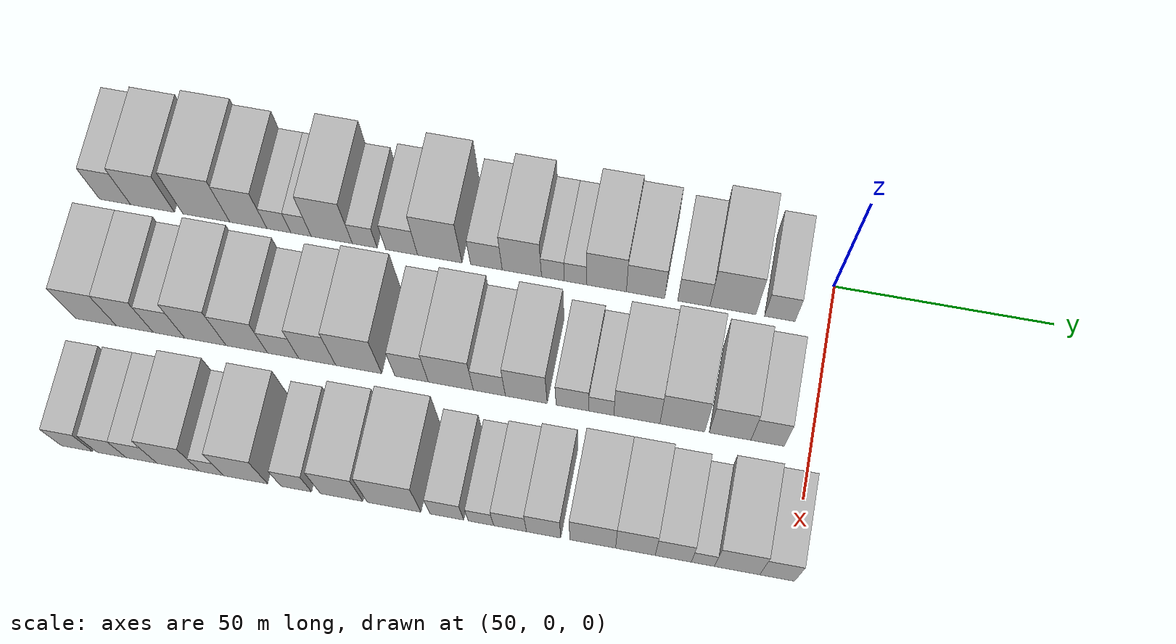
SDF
<sdf version="1.6">
 <world name="default">
  <model name="building_21">
   <static>1</static>
   <pose>50.0000 -166.2073 0 0.000000 0.000000 0.000000</pose>
   <link name="link">
    <pose>0 0 9.00 0 0 0</pose>
    <collision name="collision"><geometry><box><size>20.0000 7.3956 18.0000</size></box></geometry></collision>
    <visual name="visual">
     <cast_shadows>0</cast_shadows>
     <geometry><box><size>20.0000 7.3956 18.0000</size></box></geometry>
     <material>
      <script>
       <uri>model://HANNAS_wall/materials/scripts</uri>
       <uri>model://HANNAS_wall/materials/textures</uri>
       <name>vrc/HANNAS_wall</name>
      </script>
     </material>
    </visual>
   </link>
  </model>
  <model name="building_22">
   <static>1</static>
   <pose>50.0000 -157.2768 0 0.000000 0.000000 0.000000</pose>
   <link name="link">
    <pose>0 0 10.50 0 0 0</pose>
    <collision name="collision"><geometry><box><size>20.0000 10.4653 21.0000</size></box></geometry></collision>
    <visual name="visual">
     <cast_shadows>0</cast_shadows>
     <geometry><box><size>20.0000 10.4653 21.0000</size></box></geometry>
     <material>
      <script>
       <uri>model://HANNAS_wall/materials/scripts</uri>
       <uri>model://HANNAS_wall/materials/textures</uri>
       <name>vrc/HANNAS_wall</name>
      </script>
     </material>
    </visual>
   </link>
  </model>
  <model name="building_23">
   <static>1</static>
   <pose>50.0000 -144.4714 0 0.000000 0.000000 0.000000</pose>
   <link name="link">
    <pose>0 0 12.00 0 0 0</pose>
    <collision name="collision"><geometry><box><size>20.0000 11.1454 24.0000</size></box></geometry></collision>
    <visual name="visual">
     <cast_shadows>0</cast_shadows>
     <geometry><box><size>20.0000 11.1454 24.0000</size></box></geometry>
     <material>
      <script>
       <uri>model://HANNAS_wall/materials/scripts</uri>
       <uri>model://HANNAS_wall/materials/textures</uri>
       <name>vrc/HANNAS_wall</name>
      </script>
     </material>
    </visual>
   </link>
  </model>
  <model name="building_24">
   <static>1</static>
   <pose>50.0000 -134.5044 0 0.000000 0.000000 0.000000</pose>
   <link name="link">
    <pose>0 0 10.50 0 0 0</pose>
    <collision name="collision"><geometry><box><size>20.0000 8.7886 21.0000</size></box></geometry></collision>
    <visual name="visual">
     <cast_shadows>0</cast_shadows>
     <geometry><box><size>20.0000 8.7886 21.0000</size></box></geometry>
     <material>
      <script>
       <uri>model://HANNAS_wall/materials/scripts</uri>
       <uri>model://HANNAS_wall/materials/textures</uri>
       <name>vrc/HANNAS_wall</name>
      </script>
     </material>
    </visual>
   </link>
  </model>
  <model name="building_25">
   <static>1</static>
   <pose>50.0000 -127.2992 0 0.000000 0.000000 0.000000</pose>
   <link name="link">
    <pose>0 0 6.00 0 0 0</pose>
    <collision name="collision"><geometry><box><size>20.0000 5.6218 12.0000</size></box></geometry></collision>
    <visual name="visual">
     <cast_shadows>0</cast_shadows>
     <geometry><box><size>20.0000 5.6218 12.0000</size></box></geometry>
     <material>
      <script>
       <uri>model://HANNAS_wall/materials/scripts</uri>
       <uri>model://HANNAS_wall/materials/textures</uri>
       <name>vrc/HANNAS_wall</name>
      </script>
     </material>
    </visual>
   </link>
  </model>
  <model name="building_26">
   <static>1</static>
   <pose>50.0000 -122.0764 0 0.000000 0.000000 0.000000</pose>
   <link name="link">
    <pose>0 0 6.00 0 0 0</pose>
    <collision name="collision"><geometry><box><size>20.0000 4.8238 12.0000</size></box></geometry></collision>
    <visual name="visual">
     <cast_shadows>0</cast_shadows>
     <geometry><box><size>20.0000 4.8238 12.0000</size></box></geometry>
     <material>
      <script>
       <uri>model://HANNAS_wall/materials/scripts</uri>
       <uri>model://HANNAS_wall/materials/textures</uri>
       <name>vrc/HANNAS_wall</name>
      </script>
     </material>
    </visual>
   </link>
  </model>
  <model name="building_27">
   <static>1</static>
   <pose>50.0000 -114.8184 0 0.000000 0.000000 0.000000</pose>
   <link name="link">
    <pose>0 0 12.00 0 0 0</pose>
    <collision name="collision"><geometry><box><size>20.0000 9.6922 24.0000</size></box></geometry></collision>
    <visual name="visual">
     <cast_shadows>0</cast_shadows>
     <geometry><box><size>20.0000 9.6922 24.0000</size></box></geometry>
     <material>
      <script>
       <uri>model://HANNAS_wall/materials/scripts</uri>
       <uri>model://HANNAS_wall/materials/textures</uri>
       <name>vrc/HANNAS_wall</name>
      </script>
     </material>
    </visual>
   </link>
  </model>
  <model name="building_28">
   <static>1</static>
   <pose>50.0000 -107.0664 0 0.000000 0.000000 0.000000</pose>
   <link name="link">
    <pose>0 0 6.00 0 0 0</pose>
    <collision name="collision"><geometry><box><size>20.0000 5.8118 12.0000</size></box></geometry></collision>
    <visual name="visual">
     <cast_shadows>0</cast_shadows>
     <geometry><box><size>20.0000 5.8118 12.0000</size></box></geometry>
     <material>
      <script>
       <uri>model://HANNAS_wall/materials/scripts</uri>
       <uri>model://HANNAS_wall/materials/textures</uri>
       <name>vrc/HANNAS_wall</name>
      </script>
     </material>
    </visual>
   </link>
  </model>
  <model name="building_29">
   <static>1</static>
   <pose>50.0000 -98.4347 0 0.000000 0.000000 0.000000</pose>
   <link name="link">
    <pose>0 0 7.50 0 0 0</pose>
    <collision name="collision"><geometry><box><size>20.0000 7.4516 15.0000</size></box></geometry></collision>
    <visual name="visual">
     <cast_shadows>0</cast_shadows>
     <geometry><box><size>20.0000 7.4516 15.0000</size></box></geometry>
     <material>
      <script>
       <uri>model://HANNAS_wall/materials/scripts</uri>
       <uri>model://HANNAS_wall/materials/textures</uri>
       <name>vrc/HANNAS_wall</name>
      </script>
     </material>
    </visual>
   </link>
  </model>
  <model name="building_30">
   <static>1</static>
   <pose>50.0000 -89.5122 0 0.000000 0.000000 0.000000</pose>
   <link name="link">
    <pose>0 0 12.00 0 0 0</pose>
    <collision name="collision"><geometry><box><size>20.0000 10.3935 24.0000</size></box></geometry></collision>
    <visual name="visual">
     <cast_shadows>0</cast_shadows>
     <geometry><box><size>20.0000 10.3935 24.0000</size></box></geometry>
     <material>
      <script>
       <uri>model://HANNAS_wall/materials/scripts</uri>
       <uri>model://HANNAS_wall/materials/textures</uri>
       <name>vrc/HANNAS_wall</name>
      </script>
     </material>
    </visual>
   </link>
  </model>
  <model name="building_31">
   <static>1</static>
   <pose>50.0000 -78.6340 0 0.000000 0.000000 0.000000</pose>
   <link name="link">
    <pose>0 0 7.50 0 0 0</pose>
    <collision name="collision"><geometry><box><size>20.0000 7.3629 15.0000</size></box></geometry></collision>
    <visual name="visual">
     <cast_shadows>0</cast_shadows>
     <geometry><box><size>20.0000 7.3629 15.0000</size></box></geometry>
     <material>
      <script>
       <uri>model://HANNAS_wall/materials/scripts</uri>
       <uri>model://HANNAS_wall/materials/textures</uri>
       <name>vrc/HANNAS_wall</name>
      </script>
     </material>
    </visual>
   </link>
  </model>
  <model name="building_32">
   <static>1</static>
   <pose>50.0000 -70.3934 0 0.000000 0.000000 0.000000</pose>
   <link name="link">
    <pose>0 0 10.50 0 0 0</pose>
    <collision name="collision"><geometry><box><size>20.0000 9.1181 21.0000</size></box></geometry></collision>
    <visual name="visual">
     <cast_shadows>0</cast_shadows>
     <geometry><box><size>20.0000 9.1181 21.0000</size></box></geometry>
     <material>
      <script>
       <uri>model://HANNAS_wall/materials/scripts</uri>
       <uri>model://HANNAS_wall/materials/textures</uri>
       <name>vrc/HANNAS_wall</name>
      </script>
     </material>
    </visual>
   </link>
  </model>
  <model name="building_33">
   <static>1</static>
   <pose>50.0000 -63.2022 0 0.000000 0.000000 0.000000</pose>
   <link name="link">
    <pose>0 0 6.00 0 0 0</pose>
    <collision name="collision"><geometry><box><size>20.0000 5.2643 12.0000</size></box></geometry></collision>
    <visual name="visual">
     <cast_shadows>0</cast_shadows>
     <geometry><box><size>20.0000 5.2643 12.0000</size></box></geometry>
     <material>
      <script>
       <uri>model://HANNAS_wall/materials/scripts</uri>
       <uri>model://HANNAS_wall/materials/textures</uri>
       <name>vrc/HANNAS_wall</name>
      </script>
     </material>
    </visual>
   </link>
  </model>
  <model name="building_34">
   <static>1</static>
   <pose>50.0000 -58.0219 0 0.000000 0.000000 0.000000</pose>
   <link name="link">
    <pose>0 0 6.00 0 0 0</pose>
    <collision name="collision"><geometry><box><size>20.0000 5.0963 12.0000</size></box></geometry></collision>
    <visual name="visual">
     <cast_shadows>0</cast_shadows>
     <geometry><box><size>20.0000 5.0963 12.0000</size></box></geometry>
     <material>
      <script>
       <uri>model://HANNAS_wall/materials/scripts</uri>
       <uri>model://HANNAS_wall/materials/textures</uri>
       <name>vrc/HANNAS_wall</name>
      </script>
     </material>
    </visual>
   </link>
  </model>
  <model name="building_35">
   <static>1</static>
   <pose>50.0000 -50.8570 0 0.000000 0.000000 0.000000</pose>
   <link name="link">
    <pose>0 0 10.50 0 0 0</pose>
    <collision name="collision"><geometry><box><size>20.0000 9.2334 21.0000</size></box></geometry></collision>
    <visual name="visual">
     <cast_shadows>0</cast_shadows>
     <geometry><box><size>20.0000 9.2334 21.0000</size></box></geometry>
     <material>
      <script>
       <uri>model://HANNAS_wall/materials/scripts</uri>
       <uri>model://HANNAS_wall/materials/textures</uri>
       <name>vrc/HANNAS_wall</name>
      </script>
     </material>
    </visual>
   </link>
  </model>
  <model name="building_36">
   <static>1</static>
   <pose>50.0000 -41.8305 0 0.000000 0.000000 0.000000</pose>
   <link name="link">
    <pose>0 0 9.00 0 0 0</pose>
    <collision name="collision"><geometry><box><size>20.0000 8.8197 18.0000</size></box></geometry></collision>
    <visual name="visual">
     <cast_shadows>0</cast_shadows>
     <geometry><box><size>20.0000 8.8197 18.0000</size></box></geometry>
     <material>
      <script>
       <uri>model://HANNAS_wall/materials/scripts</uri>
       <uri>model://HANNAS_wall/materials/textures</uri>
       <name>vrc/HANNAS_wall</name>
      </script>
     </material>
    </visual>
   </link>
  </model>
  <model name="building_37">
   <static>1</static>
   <pose>50.0000 -30.7251 0 0.000000 0.000000 0.000000</pose>
   <link name="link">
    <pose>0 0 7.50 0 0 0</pose>
    <collision name="collision"><geometry><box><size>20.0000 7.3911 15.0000</size></box></geometry></collision>
    <visual name="visual">
     <cast_shadows>0</cast_shadows>
     <geometry><box><size>20.0000 7.3911 15.0000</size></box></geometry>
     <material>
      <script>
       <uri>model://HANNAS_wall/materials/scripts</uri>
       <uri>model://HANNAS_wall/materials/textures</uri>
       <name>vrc/HANNAS_wall</name>
      </script>
     </material>
    </visual>
   </link>
  </model>
  <model name="building_38">
   <static>1</static>
   <pose>50.0000 -21.7830 0 0.000000 0.000000 0.000000</pose>
   <link name="link">
    <pose>0 0 12.00 0 0 0</pose>
    <collision name="collision"><geometry><box><size>20.0000 10.4931 24.0000</size></box></geometry></collision>
    <visual name="visual">
     <cast_shadows>0</cast_shadows>
     <geometry><box><size>20.0000 10.4931 24.0000</size></box></geometry>
     <material>
      <script>
       <uri>model://HANNAS_wall/materials/scripts</uri>
       <uri>model://HANNAS_wall/materials/textures</uri>
       <name>vrc/HANNAS_wall</name>
      </script>
     </material>
    </visual>
   </link>
  </model>
  <model name="building_39">
   <static>1</static>
   <pose>50.0000 -11.0587 0 0.000000 0.000000 0.000000</pose>
   <link name="link">
    <pose>0 0 7.50 0 0 0</pose>
    <collision name="collision"><geometry><box><size>20.0000 6.9554 15.0000</size></box></geometry></collision>
    <visual name="visual">
     <cast_shadows>0</cast_shadows>
     <geometry><box><size>20.0000 6.9554 15.0000</size></box></geometry>
     <material>
      <script>
       <uri>model://HANNAS_wall/materials/scripts</uri>
       <uri>model://HANNAS_wall/materials/textures</uri>
       <name>vrc/HANNAS_wall</name>
      </script>
     </material>
    </visual>
   </link>
  </model>
  <model name="building_93">
   <static>1</static>
   <pose>79.0000 -162.5135 0 0.000000 0.000000 0.000000</pose>
   <link name="link">
    <pose>0 0 10.50 0 0 0</pose>
    <collision name="collision"><geometry><box><size>20.0000 9.4381 21.0000</size></box></geometry></collision>
    <visual name="visual">
     <cast_shadows>0</cast_shadows>
     <geometry><box><size>20.0000 9.4381 21.0000</size></box></geometry>
     <material>
      <script>
       <uri>model://HANNAS_wall/materials/scripts</uri>
       <uri>model://HANNAS_wall/materials/textures</uri>
       <name>vrc/HANNAS_wall</name>
      </script>
     </material>
    </visual>
   </link>
  </model>
  <model name="building_94">
   <static>1</static>
   <pose>79.0000 -153.5056 0 0.000000 0.000000 0.000000</pose>
   <link name="link">
    <pose>0 0 10.50 0 0 0</pose>
    <collision name="collision"><geometry><box><size>20.0000 8.5777 21.0000</size></box></geometry></collision>
    <visual name="visual">
     <cast_shadows>0</cast_shadows>
     <geometry><box><size>20.0000 8.5777 21.0000</size></box></geometry>
     <material>
      <script>
       <uri>model://HANNAS_wall/materials/scripts</uri>
       <uri>model://HANNAS_wall/materials/textures</uri>
       <name>vrc/HANNAS_wall</name>
      </script>
     </material>
    </visual>
   </link>
  </model>
  <model name="building_95">
   <static>1</static>
   <pose>79.0000 -145.5648 0 0.000000 0.000000 0.000000</pose>
   <link name="link">
    <pose>0 0 9.00 0 0 0</pose>
    <collision name="collision"><geometry><box><size>20.0000 7.3039 18.0000</size></box></geometry></collision>
    <visual name="visual">
     <cast_shadows>0</cast_shadows>
     <geometry><box><size>20.0000 7.3039 18.0000</size></box></geometry>
     <material>
      <script>
       <uri>model://HANNAS_wall/materials/scripts</uri>
       <uri>model://HANNAS_wall/materials/textures</uri>
       <name>vrc/HANNAS_wall</name>
      </script>
     </material>
    </visual>
   </link>
  </model>
  <model name="building_96">
   <static>1</static>
   <pose>79.0000 -137.1071 0 0.000000 0.000000 0.000000</pose>
   <link name="link">
    <pose>0 0 12.00 0 0 0</pose>
    <collision name="collision"><geometry><box><size>20.0000 9.6114 24.0000</size></box></geometry></collision>
    <visual name="visual">
     <cast_shadows>0</cast_shadows>
     <geometry><box><size>20.0000 9.6114 24.0000</size></box></geometry>
     <material>
      <script>
       <uri>model://HANNAS_wall/materials/scripts</uri>
       <uri>model://HANNAS_wall/materials/textures</uri>
       <name>vrc/HANNAS_wall</name>
      </script>
     </material>
    </visual>
   </link>
  </model>
  <model name="building_97">
   <static>1</static>
   <pose>79.0000 -127.5388 0 0.000000 0.000000 0.000000</pose>
   <link name="link">
    <pose>0 0 10.50 0 0 0</pose>
    <collision name="collision"><geometry><box><size>20.0000 9.5252 21.0000</size></box></geometry></collision>
    <visual name="visual">
     <cast_shadows>0</cast_shadows>
     <geometry><box><size>20.0000 9.5252 21.0000</size></box></geometry>
     <material>
      <script>
       <uri>model://HANNAS_wall/materials/scripts</uri>
       <uri>model://HANNAS_wall/materials/textures</uri>
       <name>vrc/HANNAS_wall</name>
      </script>
     </material>
    </visual>
   </link>
  </model>
  <model name="building_98">
   <static>1</static>
   <pose>79.0000 -119.1554 0 0.000000 0.000000 0.000000</pose>
   <link name="link">
    <pose>0 0 7.50 0 0 0</pose>
    <collision name="collision"><geometry><box><size>20.0000 7.2415 15.0000</size></box></geometry></collision>
    <visual name="visual">
     <cast_shadows>0</cast_shadows>
     <geometry><box><size>20.0000 7.2415 15.0000</size></box></geometry>
     <material>
      <script>
       <uri>model://HANNAS_wall/materials/scripts</uri>
       <uri>model://HANNAS_wall/materials/textures</uri>
       <name>vrc/HANNAS_wall</name>
      </script>
     </material>
    </visual>
   </link>
  </model>
  <model name="building_99">
   <static>1</static>
   <pose>79.0000 -111.3024 0 0.000000 0.000000 0.000000</pose>
   <link name="link">
    <pose>0 0 10.50 0 0 0</pose>
    <collision name="collision"><geometry><box><size>20.0000 8.4645 21.0000</size></box></geometry></collision>
    <visual name="visual">
     <cast_shadows>0</cast_shadows>
     <geometry><box><size>20.0000 8.4645 21.0000</size></box></geometry>
     <material>
      <script>
       <uri>model://HANNAS_wall/materials/scripts</uri>
       <uri>model://HANNAS_wall/materials/textures</uri>
       <name>vrc/HANNAS_wall</name>
      </script>
     </material>
    </visual>
   </link>
  </model>
  <model name="building_100">
   <static>1</static>
   <pose>79.0000 -101.7887 0 0.000000 0.000000 0.000000</pose>
   <link name="link">
    <pose>0 0 12.00 0 0 0</pose>
    <collision name="collision"><geometry><box><size>20.0000 10.5630 24.0000</size></box></geometry></collision>
    <visual name="visual">
     <cast_shadows>0</cast_shadows>
     <geometry><box><size>20.0000 10.5630 24.0000</size></box></geometry>
     <material>
      <script>
       <uri>model://HANNAS_wall/materials/scripts</uri>
       <uri>model://HANNAS_wall/materials/textures</uri>
       <name>vrc/HANNAS_wall</name>
      </script>
     </material>
    </visual>
   </link>
  </model>
  <model name="building_101">
   <static>1</static>
   <pose>79.0000 -89.7005 0 0.000000 0.000000 0.000000</pose>
   <link name="link">
    <pose>0 0 9.00 0 0 0</pose>
    <collision name="collision"><geometry><box><size>20.0000 7.6134 18.0000</size></box></geometry></collision>
    <visual name="visual">
     <cast_shadows>0</cast_shadows>
     <geometry><box><size>20.0000 7.6134 18.0000</size></box></geometry>
     <material>
      <script>
       <uri>model://HANNAS_wall/materials/scripts</uri>
       <uri>model://HANNAS_wall/materials/textures</uri>
       <name>vrc/HANNAS_wall</name>
      </script>
     </material>
    </visual>
   </link>
  </model>
  <model name="building_102">
   <static>1</static>
   <pose>79.0000 -80.7603 0 0.000000 0.000000 0.000000</pose>
   <link name="link">
    <pose>0 0 10.50 0 0 0</pose>
    <collision name="collision"><geometry><box><size>20.0000 10.2671 21.0000</size></box></geometry></collision>
    <visual name="visual">
     <cast_shadows>0</cast_shadows>
     <geometry><box><size>20.0000 10.2671 21.0000</size></box></geometry>
     <material>
      <script>
       <uri>model://HANNAS_wall/materials/scripts</uri>
       <uri>model://HANNAS_wall/materials/textures</uri>
       <name>vrc/HANNAS_wall</name>
      </script>
     </material>
    </visual>
   </link>
  </model>
  <model name="building_103">
   <static>1</static>
   <pose>79.0000 -72.0006 0 0.000000 0.000000 0.000000</pose>
   <link name="link">
    <pose>0 0 7.50 0 0 0</pose>
    <collision name="collision"><geometry><box><size>20.0000 7.2522 15.0000</size></box></geometry></collision>
    <visual name="visual">
     <cast_shadows>0</cast_shadows>
     <geometry><box><size>20.0000 7.2522 15.0000</size></box></geometry>
     <material>
      <script>
       <uri>model://HANNAS_wall/materials/scripts</uri>
       <uri>model://HANNAS_wall/materials/textures</uri>
       <name>vrc/HANNAS_wall</name>
      </script>
     </material>
    </visual>
   </link>
  </model>
  <model name="building_104">
   <static>1</static>
   <pose>79.0000 -63.6377 0 0.000000 0.000000 0.000000</pose>
   <link name="link">
    <pose>0 0 10.50 0 0 0</pose>
    <collision name="collision"><geometry><box><size>20.0000 9.4737 21.0000</size></box></geometry></collision>
    <visual name="visual">
     <cast_shadows>0</cast_shadows>
     <geometry><box><size>20.0000 9.4737 21.0000</size></box></geometry>
     <material>
      <script>
       <uri>model://HANNAS_wall/materials/scripts</uri>
       <uri>model://HANNAS_wall/materials/textures</uri>
       <name>vrc/HANNAS_wall</name>
      </script>
     </material>
    </visual>
   </link>
  </model>
  <model name="building_105">
   <static>1</static>
   <pose>79.0000 -53.2099 0 0.000000 0.000000 0.000000</pose>
   <link name="link">
    <pose>0 0 7.50 0 0 0</pose>
    <collision name="collision"><geometry><box><size>20.0000 7.3819 15.0000</size></box></geometry></collision>
    <visual name="visual">
     <cast_shadows>0</cast_shadows>
     <geometry><box><size>20.0000 7.3819 15.0000</size></box></geometry>
     <material>
      <script>
       <uri>model://HANNAS_wall/materials/scripts</uri>
       <uri>model://HANNAS_wall/materials/textures</uri>
       <name>vrc/HANNAS_wall</name>
      </script>
     </material>
    </visual>
   </link>
  </model>
  <model name="building_106">
   <static>1</static>
   <pose>79.0000 -46.7026 0 0.000000 0.000000 0.000000</pose>
   <link name="link">
    <pose>0 0 6.00 0 0 0</pose>
    <collision name="collision"><geometry><box><size>20.0000 5.6326 12.0000</size></box></geometry></collision>
    <visual name="visual">
     <cast_shadows>0</cast_shadows>
     <geometry><box><size>20.0000 5.6326 12.0000</size></box></geometry>
     <material>
      <script>
       <uri>model://HANNAS_wall/materials/scripts</uri>
       <uri>model://HANNAS_wall/materials/textures</uri>
       <name>vrc/HANNAS_wall</name>
      </script>
     </material>
    </visual>
   </link>
  </model>
  <model name="building_107">
   <static>1</static>
   <pose>79.0000 -38.7095 0 0.000000 0.000000 0.000000</pose>
   <link name="link">
    <pose>0 0 10.50 0 0 0</pose>
    <collision name="collision"><geometry><box><size>20.0000 10.3536 21.0000</size></box></geometry></collision>
    <visual name="visual">
     <cast_shadows>0</cast_shadows>
     <geometry><box><size>20.0000 10.3536 21.0000</size></box></geometry>
     <material>
      <script>
       <uri>model://HANNAS_wall/materials/scripts</uri>
       <uri>model://HANNAS_wall/materials/textures</uri>
       <name>vrc/HANNAS_wall</name>
      </script>
     </material>
    </visual>
   </link>
  </model>
  <model name="building_108">
   <static>1</static>
   <pose>79.0000 -28.5107 0 0.000000 0.000000 0.000000</pose>
   <link name="link">
    <pose>0 0 12.00 0 0 0</pose>
    <collision name="collision"><geometry><box><size>20.0000 10.0440 24.0000</size></box></geometry></collision>
    <visual name="visual">
     <cast_shadows>0</cast_shadows>
     <geometry><box><size>20.0000 10.0440 24.0000</size></box></geometry>
     <material>
      <script>
       <uri>model://HANNAS_wall/materials/scripts</uri>
       <uri>model://HANNAS_wall/materials/textures</uri>
       <name>vrc/HANNAS_wall</name>
      </script>
     </material>
    </visual>
   </link>
  </model>
  <model name="building_109">
   <static>1</static>
   <pose>79.0000 -17.8325 0 0.000000 0.000000 0.000000</pose>
   <link name="link">
    <pose>0 0 10.50 0 0 0</pose>
    <collision name="collision"><geometry><box><size>20.0000 9.3123 21.0000</size></box></geometry></collision>
    <visual name="visual">
     <cast_shadows>0</cast_shadows>
     <geometry><box><size>20.0000 9.3123 21.0000</size></box></geometry>
     <material>
      <script>
       <uri>model://HANNAS_wall/materials/scripts</uri>
       <uri>model://HANNAS_wall/materials/textures</uri>
       <name>vrc/HANNAS_wall</name>
      </script>
     </material>
    </visual>
   </link>
  </model>
  <model name="building_110">
   <static>1</static>
   <pose>79.0000 -9.4732 0 0.000000 0.000000 0.000000</pose>
   <link name="link">
    <pose>0 0 9.00 0 0 0</pose>
    <collision name="collision"><geometry><box><size>20.0000 7.4063 18.0000</size></box></geometry></collision>
    <visual name="visual">
     <cast_shadows>0</cast_shadows>
     <geometry><box><size>20.0000 7.4063 18.0000</size></box></geometry>
     <material>
      <script>
       <uri>model://HANNAS_wall/materials/scripts</uri>
       <uri>model://HANNAS_wall/materials/textures</uri>
       <name>vrc/HANNAS_wall</name>
      </script>
     </material>
    </visual>
   </link>
  </model>
  <model name="building_166">
   <static>1</static>
   <pose>108.0000 -158.6893 0 0.000000 0.000000 0.000000</pose>
   <link name="link">
    <pose>0 0 7.50 0 0 0</pose>
    <collision name="collision"><geometry><box><size>20.0000 7.1371 15.0000</size></box></geometry></collision>
    <visual name="visual">
     <cast_shadows>0</cast_shadows>
     <geometry><box><size>20.0000 7.1371 15.0000</size></box></geometry>
     <material>
      <script>
       <uri>model://HANNAS_wall/materials/scripts</uri>
       <uri>model://HANNAS_wall/materials/textures</uri>
       <name>vrc/HANNAS_wall</name>
      </script>
     </material>
    </visual>
   </link>
  </model>
  <model name="building_167">
   <static>1</static>
   <pose>108.0000 -150.8005 0 0.000000 0.000000 0.000000</pose>
   <link name="link">
    <pose>0 0 7.50 0 0 0</pose>
    <collision name="collision"><geometry><box><size>20.0000 6.6404 15.0000</size></box></geometry></collision>
    <visual name="visual">
     <cast_shadows>0</cast_shadows>
     <geometry><box><size>20.0000 6.6404 15.0000</size></box></geometry>
     <material>
      <script>
       <uri>model://HANNAS_wall/materials/scripts</uri>
       <uri>model://HANNAS_wall/materials/textures</uri>
       <name>vrc/HANNAS_wall</name>
      </script>
     </material>
    </visual>
   </link>
  </model>
  <model name="building_168">
   <static>1</static>
   <pose>108.0000 -143.9662 0 0.000000 0.000000 0.000000</pose>
   <link name="link">
    <pose>0 0 7.50 0 0 0</pose>
    <collision name="collision"><geometry><box><size>20.0000 7.0282 15.0000</size></box></geometry></collision>
    <visual name="visual">
     <cast_shadows>0</cast_shadows>
     <geometry><box><size>20.0000 7.0282 15.0000</size></box></geometry>
     <material>
      <script>
       <uri>model://HANNAS_wall/materials/scripts</uri>
       <uri>model://HANNAS_wall/materials/textures</uri>
       <name>vrc/HANNAS_wall</name>
      </script>
     </material>
    </visual>
   </link>
  </model>
  <model name="building_169">
   <static>1</static>
   <pose>108.0000 -135.6322 0 0.000000 0.000000 0.000000</pose>
   <link name="link">
    <pose>0 0 10.50 0 0 0</pose>
    <collision name="collision"><geometry><box><size>20.0000 9.6399 21.0000</size></box></geometry></collision>
    <visual name="visual">
     <cast_shadows>0</cast_shadows>
     <geometry><box><size>20.0000 9.6399 21.0000</size></box></geometry>
     <material>
      <script>
       <uri>model://HANNAS_wall/materials/scripts</uri>
       <uri>model://HANNAS_wall/materials/textures</uri>
       <name>vrc/HANNAS_wall</name>
      </script>
     </material>
    </visual>
   </link>
  </model>
  <model name="building_170">
   <static>1</static>
   <pose>108.0000 -128.0869 0 0.000000 0.000000 0.000000</pose>
   <link name="link">
    <pose>0 0 6.00 0 0 0</pose>
    <collision name="collision"><geometry><box><size>20.0000 5.4508 12.0000</size></box></geometry></collision>
    <visual name="visual">
     <cast_shadows>0</cast_shadows>
     <geometry><box><size>20.0000 5.4508 12.0000</size></box></geometry>
     <material>
      <script>
       <uri>model://HANNAS_wall/materials/scripts</uri>
       <uri>model://HANNAS_wall/materials/textures</uri>
       <name>vrc/HANNAS_wall</name>
      </script>
     </material>
    </visual>
   </link>
  </model>
  <model name="building_171">
   <static>1</static>
   <pose>108.0000 -120.4477 0 0.000000 0.000000 0.000000</pose>
   <link name="link">
    <pose>0 0 10.50 0 0 0</pose>
    <collision name="collision"><geometry><box><size>20.0000 9.8276 21.0000</size></box></geometry></collision>
    <visual name="visual">
     <cast_shadows>0</cast_shadows>
     <geometry><box><size>20.0000 9.8276 21.0000</size></box></geometry>
     <material>
      <script>
       <uri>model://HANNAS_wall/materials/scripts</uri>
       <uri>model://HANNAS_wall/materials/textures</uri>
       <name>vrc/HANNAS_wall</name>
      </script>
     </material>
    </visual>
   </link>
  </model>
  <model name="building_172">
   <static>1</static>
   <pose>108.0000 -109.1068 0 0.000000 0.000000 0.000000</pose>
   <link name="link">
    <pose>0 0 7.50 0 0 0</pose>
    <collision name="collision"><geometry><box><size>20.0000 6.8542 15.0000</size></box></geometry></collision>
    <visual name="visual">
     <cast_shadows>0</cast_shadows>
     <geometry><box><size>20.0000 6.8542 15.0000</size></box></geometry>
     <material>
      <script>
       <uri>model://HANNAS_wall/materials/scripts</uri>
       <uri>model://HANNAS_wall/materials/textures</uri>
       <name>vrc/HANNAS_wall</name>
      </script>
     </material>
    </visual>
   </link>
  </model>
  <model name="building_173">
   <static>1</static>
   <pose>108.0000 -98.9197 0 0.000000 0.000000 0.000000</pose>
   <link name="link">
    <pose>0 0 10.50 0 0 0</pose>
    <collision name="collision"><geometry><box><size>20.0000 9.5198 21.0000</size></box></geometry></collision>
    <visual name="visual">
     <cast_shadows>0</cast_shadows>
     <geometry><box><size>20.0000 9.5198 21.0000</size></box></geometry>
     <material>
      <script>
       <uri>model://HANNAS_wall/materials/scripts</uri>
       <uri>model://HANNAS_wall/materials/textures</uri>
       <name>vrc/HANNAS_wall</name>
      </script>
     </material>
    </visual>
   </link>
  </model>
  <model name="building_174">
   <static>1</static>
   <pose>108.0000 -87.1930 0 0.000000 0.000000 0.000000</pose>
   <link name="link">
    <pose>0 0 12.00 0 0 0</pose>
    <collision name="collision"><geometry><box><size>20.0000 11.9337 24.0000</size></box></geometry></collision>
    <visual name="visual">
     <cast_shadows>0</cast_shadows>
     <geometry><box><size>20.0000 11.9337 24.0000</size></box></geometry>
     <material>
      <script>
       <uri>model://HANNAS_wall/materials/scripts</uri>
       <uri>model://HANNAS_wall/materials/textures</uri>
       <name>vrc/HANNAS_wall</name>
      </script>
     </material>
    </visual>
   </link>
  </model>
  <model name="building_175">
   <static>1</static>
   <pose>108.0000 -75.4781 0 0.000000 0.000000 0.000000</pose>
   <link name="link">
    <pose>0 0 7.50 0 0 0</pose>
    <collision name="collision"><geometry><box><size>20.0000 7.4962 15.0000</size></box></geometry></collision>
    <visual name="visual">
     <cast_shadows>0</cast_shadows>
     <geometry><box><size>20.0000 7.4962 15.0000</size></box></geometry>
     <material>
      <script>
       <uri>model://HANNAS_wall/materials/scripts</uri>
       <uri>model://HANNAS_wall/materials/textures</uri>
       <name>vrc/HANNAS_wall</name>
      </script>
     </material>
    </visual>
   </link>
  </model>
  <model name="building_176">
   <static>1</static>
   <pose>108.0000 -67.9277 0 0.000000 0.000000 0.000000</pose>
   <link name="link">
    <pose>0 0 6.00 0 0 0</pose>
    <collision name="collision"><geometry><box><size>20.0000 5.6046 12.0000</size></box></geometry></collision>
    <visual name="visual">
     <cast_shadows>0</cast_shadows>
     <geometry><box><size>20.0000 5.6046 12.0000</size></box></geometry>
     <material>
      <script>
       <uri>model://HANNAS_wall/materials/scripts</uri>
       <uri>model://HANNAS_wall/materials/textures</uri>
       <name>vrc/HANNAS_wall</name>
      </script>
     </material>
    </visual>
   </link>
  </model>
  <model name="building_177">
   <static>1</static>
   <pose>108.0000 -61.4850 0 0.000000 0.000000 0.000000</pose>
   <link name="link">
    <pose>0 0 7.50 0 0 0</pose>
    <collision name="collision"><geometry><box><size>20.0000 7.2808 15.0000</size></box></geometry></collision>
    <visual name="visual">
     <cast_shadows>0</cast_shadows>
     <geometry><box><size>20.0000 7.2808 15.0000</size></box></geometry>
     <material>
      <script>
       <uri>model://HANNAS_wall/materials/scripts</uri>
       <uri>model://HANNAS_wall/materials/textures</uri>
       <name>vrc/HANNAS_wall</name>
      </script>
     </material>
    </visual>
   </link>
  </model>
  <model name="building_178">
   <static>1</static>
   <pose>108.0000 -54.0702 0 0.000000 0.000000 0.000000</pose>
   <link name="link">
    <pose>0 0 9.00 0 0 0</pose>
    <collision name="collision"><geometry><box><size>20.0000 7.5489 18.0000</size></box></geometry></collision>
    <visual name="visual">
     <cast_shadows>0</cast_shadows>
     <geometry><box><size>20.0000 7.5489 18.0000</size></box></geometry>
     <material>
      <script>
       <uri>model://HANNAS_wall/materials/scripts</uri>
       <uri>model://HANNAS_wall/materials/textures</uri>
       <name>vrc/HANNAS_wall</name>
      </script>
     </material>
    </visual>
   </link>
  </model>
  <model name="building_179">
   <static>1</static>
   <pose>108.0000 -43.2788 0 0.000000 0.000000 0.000000</pose>
   <link name="link">
    <pose>0 0 10.50 0 0 0</pose>
    <collision name="collision"><geometry><box><size>20.0000 10.0337 21.0000</size></box></geometry></collision>
    <visual name="visual">
     <cast_shadows>0</cast_shadows>
     <geometry><box><size>20.0000 10.0337 21.0000</size></box></geometry>
     <material>
      <script>
       <uri>model://HANNAS_wall/materials/scripts</uri>
       <uri>model://HANNAS_wall/materials/textures</uri>
       <name>vrc/HANNAS_wall</name>
      </script>
     </material>
    </visual>
   </link>
  </model>
  <model name="building_180">
   <static>1</static>
   <pose>108.0000 -33.9256 0 0.000000 0.000000 0.000000</pose>
   <link name="link">
    <pose>0 0 10.50 0 0 0</pose>
    <collision name="collision"><geometry><box><size>20.0000 8.6727 21.0000</size></box></geometry></collision>
    <visual name="visual">
     <cast_shadows>0</cast_shadows>
     <geometry><box><size>20.0000 8.6727 21.0000</size></box></geometry>
     <material>
      <script>
       <uri>model://HANNAS_wall/materials/scripts</uri>
       <uri>model://HANNAS_wall/materials/textures</uri>
       <name>vrc/HANNAS_wall</name>
      </script>
     </material>
    </visual>
   </link>
  </model>
  <model name="building_181">
   <static>1</static>
   <pose>108.0000 -25.6347 0 0.000000 0.000000 0.000000</pose>
   <link name="link">
    <pose>0 0 9.00 0 0 0</pose>
    <collision name="collision"><geometry><box><size>20.0000 7.9091 18.0000</size></box></geometry></collision>
    <visual name="visual">
     <cast_shadows>0</cast_shadows>
     <geometry><box><size>20.0000 7.9091 18.0000</size></box></geometry>
     <material>
      <script>
       <uri>model://HANNAS_wall/materials/scripts</uri>
       <uri>model://HANNAS_wall/materials/textures</uri>
       <name>vrc/HANNAS_wall</name>
      </script>
     </material>
    </visual>
   </link>
  </model>
  <model name="building_182">
   <static>1</static>
   <pose>108.0000 -19.1531 0 0.000000 0.000000 0.000000</pose>
   <link name="link">
    <pose>0 0 6.00 0 0 0</pose>
    <collision name="collision"><geometry><box><size>20.0000 5.0540 12.0000</size></box></geometry></collision>
    <visual name="visual">
     <cast_shadows>0</cast_shadows>
     <geometry><box><size>20.0000 5.0540 12.0000</size></box></geometry>
     <material>
      <script>
       <uri>model://HANNAS_wall/materials/scripts</uri>
       <uri>model://HANNAS_wall/materials/textures</uri>
       <name>vrc/HANNAS_wall</name>
      </script>
     </material>
    </visual>
   </link>
  </model>
  <model name="building_183">
   <static>1</static>
   <pose>108.0000 -11.7018 0 0.000000 0.000000 0.000000</pose>
   <link name="link">
    <pose>0 0 10.50 0 0 0</pose>
    <collision name="collision"><geometry><box><size>20.0000 9.8486 21.0000</size></box></geometry></collision>
    <visual name="visual">
     <cast_shadows>0</cast_shadows>
     <geometry><box><size>20.0000 9.8486 21.0000</size></box></geometry>
     <material>
      <script>
       <uri>model://HANNAS_wall/materials/scripts</uri>
       <uri>model://HANNAS_wall/materials/textures</uri>
       <name>vrc/HANNAS_wall</name>
      </script>
     </material>
    </visual>
   </link>
  </model>
  <model name="building_184">
   <static>1</static>
   <pose>108.0000 -2.9935 0 0.000000 0.000000 0.000000</pose>
   <link name="link">
    <pose>0 0 9.00 0 0 0</pose>
    <collision name="collision"><geometry><box><size>20.0000 7.5678 18.0000</size></box></geometry></collision>
    <visual name="visual">
     <cast_shadows>0</cast_shadows>
     <geometry><box><size>20.0000 7.5678 18.0000</size></box></geometry>
     <material>
      <script>
       <uri>model://HANNAS_wall/materials/scripts</uri>
       <uri>model://HANNAS_wall/materials/textures</uri>
       <name>vrc/HANNAS_wall</name>
      </script>
     </material>
    </visual>
   </link>
  </model>
 </world>
</sdf>
